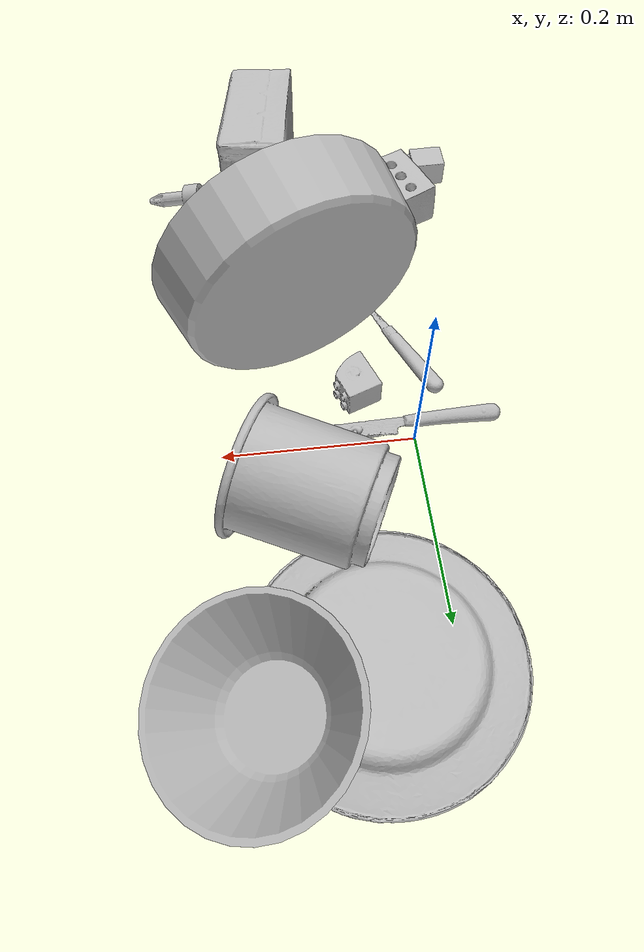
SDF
<sdf version="1.4">
  <world name="default">
    <light name="light1" type="point">
      <pose>0 0 1 0 0 0</pose>
      <diffuse>3 3 3 1</diffuse>
      <specular>3 3 3 1</specular>
    </light>
    <light name="light2" type="point">
      <pose>0 0.5 2 0 0 0</pose>
      <diffuse>1 1 1 1</diffuse>
      <specular>1 1 1 1</specular>
    </light>
    <light name="light3" type="point">
      <pose>0 0.5 2 0 0 0</pose>
      <diffuse>3 3 3 1</diffuse>
      <specular>3 3 3 1</specular>
    </light>
    <scene>
      <ambient>0.7 0.7 0.7</ambient>
    </scene>
    <model name="plate1">
      <link name="link_plate1">
        <collision name="default">
          <geometry>
            <mesh>
              <uri>model://plate/collision_meshes/collision.obj</uri>
              <scale>1.0 1.0 1.0</scale>
            </mesh>
          </geometry>
          <surface>
            <friction>
              <ode>
                <mu>0.5</mu>
                <mu2>0.5</mu2>
              </ode>
            </friction>
          <contact>
        <ode>
            <max_vel>0</max_vel>
            <min_depth>0.0001</min_depth>
            <kp>1e8</kp>
        </ode>
    </contact></surface>
        </collision>
        <visual name="default">
          <geometry>
            <mesh>
              <uri>model://plate/visual_meshes/visual.dae</uri>
              <scale>1.0 1.0 1.0</scale>
            </mesh>
          </geometry>
        </visual>
        <inertial>
          <mass>0.20059238374233246</mass>
          <pose>-0.0006044621695764363 0.00027825910365208983 -0.001056200242601335 0.002218800652723057 -0.0032254723094637602 0.45260588699646775</pose>
          <inertia>
            <ixx>0.00093837525</ixx>
            <iyy>0.0009294</iyy>
            <izz>0.0018353215</izz>
            <ixy>0</ixy>
            <ixz>0</ixz>
            <iyz>0</iyz>
          </inertia>
        </inertial>
      </link>
      <pose>0.06799119710922241 0.22979798913002014 0.013485738076269627 -3.1409127641767935 -0.0033902172623060545 1.2863078712915124</pose>
    </model>
    <model name="plate2">
      <link name="link_plate2">
        <collision name="default">
          <geometry>
            <mesh>
              <uri>model://pan_tefal/collision_meshes/collision.obj</uri>
              <scale>1.0 1.0 1.0</scale>
            </mesh>
          </geometry>
          <surface>
            <friction>
              <ode>
                <mu>0.5</mu>
                <mu2>0.5</mu2>
              </ode>
            </friction>
          <contact>
        <ode>
            <max_vel>0</max_vel>
            <min_depth>0.0001</min_depth>
            <kp>1e8</kp>
        </ode>
    </contact></surface>
        </collision>
        <visual name="default">
          <geometry>
            <mesh>
              <uri>model://pan_tefal/visual_meshes/visual.dae</uri>
              <scale>1.0 1.0 1.0</scale>
            </mesh>
          </geometry>
        </visual>
        <inertial>
          <mass>0.5801199674606323</mass>
          <pose>-0.00018002555589191616 3.279062366345897e-05 -0.008514936082065105 0.0008190222895173471 -0.0003301392673675887 -0.3318501085377774</pose>
          <inertia>
            <ixx>0.00400454</ixx>
            <iyy>0.004030358</iyy>
            <izz>0.0073715877</izz>
            <ixy>0</ixy>
            <ixz>0</ixz>
            <iyz>0</iyz>
          </inertia>
        </inertial>
      </link>
      <pose>0.11207310855388641 -0.13796156644821167 0.12841518223285675 1.4620193731516855 -0.21175851249406313 0.38124335146802857</pose>
    </model>
    <model name="bowl1">
      <link name="link_bowl1">
        <collision name="default">
          <geometry>
            <mesh>
              <uri>model://bowl/collision_meshes/collision.obj</uri>
              <scale>1.0 1.0 1.0</scale>
            </mesh>
          </geometry>
          <surface>
            <friction>
              <ode>
                <mu>0.5</mu>
                <mu2>0.5</mu2>
              </ode>
            </friction>
          <contact>
        <ode>
            <max_vel>0</max_vel>
            <min_depth>0.0001</min_depth>
            <kp>1e8</kp>
        </ode>
    </contact></surface>
        </collision>
        <visual name="default">
          <geometry>
            <mesh>
              <uri>model://bowl/visual_meshes/visual.dae</uri>
              <scale>1.0 1.0 1.0</scale>
            </mesh>
          </geometry>
        </visual>
        <inertial>
          <mass>0.055578216910362244</mass>
          <pose>0.00020445502013899386 -0.0010302060982212424 -0.000804265437182039 -0.015764048263850368 0.014546844804774466 0.7140432473852318</pose>
          <inertia>
            <ixx>0.00012766755</ixx>
            <iyy>0.000124815</iyy>
            <izz>0.00021478078</izz>
            <ixy>0</ixy>
            <ixz>0</ixz>
            <iyz>0</iyz>
          </inertia>
        </inertial>
      </link>
      <pose>0.12202922254800797 -0.14949096739292145 0.08171273022890091 1.1265011966704381 1.085615794421369 -0.05713851155348361</pose>
    </model>
    <model name="bowl2">
      <link name="link_bowl2">
        <collision name="default">
          <geometry>
            <mesh>
              <uri>model://bowl_a/collision_meshes/collision.obj</uri>
              <scale>1.0 1.0 1.0</scale>
            </mesh>
          </geometry>
          <surface>
            <friction>
              <ode>
                <mu>0.5</mu>
                <mu2>0.5</mu2>
              </ode>
            </friction>
          <contact>
        <ode>
            <max_vel>0</max_vel>
            <min_depth>0.0001</min_depth>
            <kp>1e8</kp>
        </ode>
    </contact></surface>
        </collision>
        <visual name="default">
          <geometry>
            <mesh>
              <uri>model://bowl_a/visual_meshes/visual.dae</uri>
              <scale>1.0 1.0 1.0</scale>
            </mesh>
          </geometry>
        </visual>
        <inertial>
          <mass>0.31475314497947693</mass>
          <pose>0.00027867438620887697 4.730821092380211e-05 -0.0013765294570475817 -0.0009805369688078041 -0.0010938258688624044 -0.19123886294168949</pose>
          <inertia>
            <ixx>0.00089611666</ixx>
            <iyy>0.00090161816</iyy>
            <izz>0.0015937777</izz>
            <ixy>0</ixy>
            <ixz>0</ixz>
            <iyz>0</iyz>
          </inertia>
        </inertial>
      </link>
      <pose>0.17781497538089752 0.27161481976509094 0.04670042172074318 0.2800609652603984 -0.1937952252210423 2.5215590010734625</pose>
    </model>
    <model name="silverware1">
      <link name="link_silverware1">
        <collision name="default">
          <geometry>
            <mesh>
              <uri>model://spoon/collision_meshes/collision.obj</uri>
              <scale>1.0 1.0 1.0</scale>
            </mesh>
          </geometry>
          <surface>
            <friction>
              <ode>
                <mu>0.5</mu>
                <mu2>0.5</mu2>
              </ode>
            </friction>
          <contact>
        <ode>
            <max_vel>0</max_vel>
            <min_depth>0.0001</min_depth>
            <kp>1e8</kp>
        </ode>
    </contact></surface>
        </collision>
        <visual name="default">
          <geometry>
            <mesh>
              <uri>model://spoon/visual_meshes/visual.dae</uri>
              <scale>1.0 1.0 1.0</scale>
            </mesh>
          </geometry>
        </visual>
        <inertial>
          <mass>0.019504988566040993</mass>
          <pose>-0.005526313092559576 -0.0016034174477681518 -0.0007271654321812093 0.03521671064592188 -0.039065845080026425 0.006150613244710899</pose>
          <inertia>
            <ixx>1.0848988e-06</ixx>
            <iyy>7.421582e-05</iyy>
            <izz>7.4750846e-05</izz>
            <ixy>0</ixy>
            <ixz>0</ixz>
            <iyz>0</iyz>
          </inertia>
        </inertial>
      </link>
      <pose>0.00864105112850666 -0.13978831470012665 0.008385264314711094 0.0067317762906381265 0.026892981123162293 -1.137116467356912</pose>
    </model>
    <model name="box1">
      <link name="link_box1">
        <collision name="default">
          <geometry>
            <mesh>
              <uri>model://cracker_box/collision_meshes/collision.obj</uri>
              <scale>1.0 1.0 1.0</scale>
            </mesh>
          </geometry>
          <surface>
            <friction>
              <ode>
                <mu>0.5</mu>
                <mu2>0.5</mu2>
              </ode>
            </friction>
          <contact>
        <ode>
            <max_vel>0</max_vel>
            <min_depth>0.0001</min_depth>
            <kp>1e8</kp>
        </ode>
    </contact></surface>
        </collision>
        <visual name="default">
          <geometry>
            <mesh>
              <uri>model://cracker_box/visual_meshes/visual.dae</uri>
              <scale>1.0 1.0 1.0</scale>
            </mesh>
          </geometry>
        </visual>
        <inertial>
          <mass>2.5078790187835693</mass>
          <pose>0.0009464150061830878 0.00025434247800149024 -0.0017029535956680775 -0.00031620768203149627 -0.01110648960041945 0.002546794303792924</pose>
          <inertia>
            <ixx>0.0063789245</ixx>
            <iyy>0.010532858</iyy>
            <izz>0.015031353</izz>
            <ixy>0</ixy>
            <ixz>0</ixz>
            <iyz>0</iyz>
          </inertia>
        </inertial>
      </link>
      <pose>0.13441205024719238 -0.2420576810836792 0.12107817083597183 1.6741121332568525 1.3536953373633416 1.552408656801468</pose>
    </model>
    <model name="box2">
      <link name="link_box2">
        <collision name="default">
          <geometry>
            <mesh>
              <uri>model://gelatin_box/collision_meshes/collision.obj</uri>
              <scale>1.0 1.0 1.0</scale>
            </mesh>
          </geometry>
          <surface>
            <friction>
              <ode>
                <mu>0.5</mu>
                <mu2>0.5</mu2>
              </ode>
            </friction>
          <contact>
        <ode>
            <max_vel>0</max_vel>
            <min_depth>0.0001</min_depth>
            <kp>1e8</kp>
        </ode>
    </contact></surface>
        </collision>
        <visual name="default">
          <geometry>
            <mesh>
              <uri>model://gelatin_box/visual_meshes/visual.dae</uri>
              <scale>1.0 1.0 1.0</scale>
            </mesh>
          </geometry>
        </visual>
        <inertial>
          <mass>0.1847851723432541</mass>
          <pose>0.0004319618456065655 0.00011156872642459348 -0.0003640321083366871 -0.001050372098056681 -0.004755818221834168 0.016440563197305347</pose>
          <inertia>
            <ixx>0.00013044327</ixx>
            <iyy>9.317494e-05</iyy>
            <izz>0.0001985637</izz>
            <ixy>0</ixy>
            <ixz>0</ixz>
            <iyz>0</iyz>
          </inertia>
        </inertial>
      </link>
      <pose>0.05887679010629654 -0.3111269772052765 0.015168319456279278 0.005597493654490848 -0.007304591166825464 -2.637495475164086</pose>
    </model>
    <model name="cup1">
      <link name="link_cup1">
        <collision name="default">
          <geometry>
            <mesh>
              <uri>model://d_cups/collision_meshes/collision.obj</uri>
              <scale>2.0 2.0 2.0</scale>
            </mesh>
          </geometry>
          <surface>
            <friction>
              <ode>
                <mu>0.5</mu>
                <mu2>0.5</mu2>
              </ode>
            </friction>
          <contact>
        <ode>
            <max_vel>0</max_vel>
            <min_depth>0.0001</min_depth>
            <kp>1e8</kp>
        </ode>
    </contact></surface>
        </collision>
        <visual name="default">
          <geometry>
            <mesh>
              <uri>model://d_cups/visual_meshes/visual.dae</uri>
              <scale>2.0 2.0 2.0</scale>
            </mesh>
          </geometry>
        </visual>
        <inertial>
          <mass>0.47328615188598633</mass>
          <pose>0.0016136143822222948 0.0038234798703342676 -0.004533303435891867 0.24012870248045765 -0.247092443015796 0.5942312682521343</pose>
          <inertia>
            <ixx>0.0015850074</ixx>
            <iyy>0.0015804201</iyy>
            <izz>0.0014347013</izz>
            <ixy>0</ixy>
            <ixz>0</ixz>
            <iyz>0</iyz>
          </inertia>
        </inertial>
      </link>
      <pose>0.11579636484384537 0.08034338802099228 0.06764420866966248 -1.3688772049963804 1.3305980880615051 -1.8340491790729676</pose>
    </model>
    <model name="silverware2">
      <link name="link_silverware2">
        <collision name="default">
          <geometry>
            <mesh>
              <uri>model://knife/collision_meshes/collision.obj</uri>
              <scale>1.0 1.0 1.0</scale>
            </mesh>
          </geometry>
          <surface>
            <friction>
              <ode>
                <mu>0.5</mu>
                <mu2>0.5</mu2>
              </ode>
            </friction>
          <contact>
        <ode>
            <max_vel>0</max_vel>
            <min_depth>0.0001</min_depth>
            <kp>1e8</kp>
        </ode>
    </contact></surface>
        </collision>
        <visual name="default">
          <geometry>
            <mesh>
              <uri>model://knife/visual_meshes/visual.dae</uri>
              <scale>1.0 1.0 1.0</scale>
            </mesh>
          </geometry>
        </visual>
        <inertial>
          <mass>0.03430156037211418</mass>
          <pose>-0.02378525398671627 0.0015275129117071629 5.062017953605391e-05 0.07305950900181668 0.01724842494985857 -0.007409825116106198</pose>
          <inertia>
            <ixx>9.736174e-07</ixx>
            <iyy>0.00013178105</iyy>
            <izz>0.00013209462</izz>
            <ixy>0</ixy>
            <ixz>0</ixz>
            <iyz>0</iyz>
          </inertia>
        </inertial>
      </link>
      <pose>0.014615822583436966 -0.015552522614598274 0.005810763221234083 2.8893770188286694 0.025915047684028834 0.018032549570818644</pose>
    </model>
    <model name="silverware3">
      <link name="link_silverware3">
        <collision name="default">
          <geometry>
            <mesh>
              <uri>model://fork/collision_meshes/collision.obj</uri>
              <scale>1.0 1.0 1.0</scale>
            </mesh>
          </geometry>
          <surface>
            <friction>
              <ode>
                <mu>0.5</mu>
                <mu2>0.5</mu2>
              </ode>
            </friction>
          <contact>
        <ode>
            <max_vel>0</max_vel>
            <min_depth>0.0001</min_depth>
            <kp>1e8</kp>
        </ode>
    </contact></surface>
        </collision>
        <visual name="default">
          <geometry>
            <mesh>
              <uri>model://fork/visual_meshes/visual.dae</uri>
              <scale>1.0 1.0 1.0</scale>
            </mesh>
          </geometry>
        </visual>
        <inertial>
          <mass>0.014111565425992012</mass>
          <pose>-0.02957005426287651 0.0004658825055230409 0.00032188615296036005 -0.01355195006397287 -0.010977841645129428 0.014453906946454091</pose>
          <inertia>
            <ixx>4.9469025e-07</ixx>
            <iyy>3.684124e-05</iyy>
            <izz>3.7062495e-05</izz>
            <ixy>0</ixy>
            <ixz>0</ixz>
            <iyz>0</iyz>
          </inertia>
        </inertial>
      </link>
      <pose>0.18041254580020905 -0.2950424551963806 0.005723603069782257 -0.18388275465774848 0.024643870919731 1.4366543863255117</pose>
    </model>
    <model name="toy1">
      <link name="link_toy1">
        <collision name="default">
          <geometry>
            <mesh>
              <uri>model://b_lego_duplo/collision_meshes/collision.obj</uri>
              <scale>1.0 1.0 1.0</scale>
            </mesh>
          </geometry>
          <surface>
            <friction>
              <ode>
                <mu>0.5</mu>
                <mu2>0.5</mu2>
              </ode>
            </friction>
          <contact>
        <ode>
            <max_vel>0</max_vel>
            <min_depth>0.0001</min_depth>
            <kp>1e8</kp>
        </ode>
    </contact></surface>
        </collision>
        <visual name="default">
          <geometry>
            <mesh>
              <uri>model://b_lego_duplo/visual_meshes/visual.dae</uri>
              <scale>1.0 1.0 1.0</scale>
            </mesh>
          </geometry>
        </visual>
        <inertial>
          <mass>0.029451588168740273</mass>
          <pose>-0.00011053002526750788 -9.152366146736313e-06 0.0019294293597340584 -0.03749525813168218 -0.026353287435260622 0.45191626186006195</pose>
          <inertia>
            <ixx>6.0274892e-06</ixx>
            <iyy>6.0680068e-06</iyy>
            <izz>5.3702943e-06</izz>
            <ixy>0</ixy>
            <ixz>0</ixz>
            <iyz>0</iyz>
          </inertia>
        </inertial>
      </link>
      <pose>-0.07753057777881622 -0.38384607434272766 0.016152318567037582 -3.121047541922667 1.5624527265654344 -3.112492354854279</pose>
    </model>
    <model name="toy2">
      <link name="link_toy2">
        <collision name="default">
          <geometry>
            <mesh>
              <uri>model://foam_brick/collision_meshes/collision.obj</uri>
              <scale>1.0 1.0 1.0</scale>
            </mesh>
          </geometry>
          <surface>
            <friction>
              <ode>
                <mu>0.5</mu>
                <mu2>0.5</mu2>
              </ode>
            </friction>
          <contact>
        <ode>
            <max_vel>0</max_vel>
            <min_depth>0.0001</min_depth>
            <kp>1e8</kp>
        </ode>
    </contact></surface>
        </collision>
        <visual name="default">
          <geometry>
            <mesh>
              <uri>model://foam_brick/visual_meshes/visual.dae</uri>
              <scale>1.0 1.0 1.0</scale>
            </mesh>
          </geometry>
        </visual>
        <inertial>
          <mass>0.2443593144416809</mass>
          <pose>-0.0002522472059354186 0.00034584393142722547 -0.0002532101352699101 -0.2940184651969868 0.017274440266988163 -0.0007449890747987857</pose>
          <inertia>
            <ixx>0.00010674072</ixx>
            <iyy>0.00017041703</iyy>
            <izz>0.00017258283</izz>
            <ixy>0</ixy>
            <ixz>0</ixz>
            <iyz>0</iyz>
          </inertia>
        </inertial>
      </link>
      <pose>-0.03743863105773926 -0.3339906334877014 0.025922805070877075 0.013417108922057558 0.004152989673588729 1.979407438397643</pose>
    </model>
    <model name="toy3">
      <link name="link_toy3">
        <collision name="default">
          <geometry>
            <mesh>
              <uri>model://d_lego_duplo/collision_meshes/collision.obj</uri>
              <scale>1.0 1.0 1.0</scale>
            </mesh>
          </geometry>
          <surface>
            <friction>
              <ode>
                <mu>0.5</mu>
                <mu2>0.5</mu2>
              </ode>
            </friction>
          <contact>
        <ode>
            <max_vel>0</max_vel>
            <min_depth>0.0001</min_depth>
            <kp>1e8</kp>
        </ode>
    </contact></surface>
        </collision>
        <visual name="default">
          <geometry>
            <mesh>
              <uri>model://d_lego_duplo/visual_meshes/visual.dae</uri>
              <scale>1.0 1.0 1.0</scale>
            </mesh>
          </geometry>
        </visual>
        <inertial>
          <mass>0.033699363470077515</mass>
          <pose>0.002830563113093376 0.0001636613014852628 0.0008589802891947329 0.08010879334546937 -0.38355231252286476 0.0010296922462193392</pose>
          <inertia>
            <ixx>6.5236977e-06</ixx>
            <iyy>9.258897e-06</iyy>
            <izz>8.928908e-06</izz>
            <ixy>0</ixy>
            <ixz>0</ixz>
            <iyz>0</iyz>
          </inertia>
        </inertial>
      </link>
      <pose>0.056254010647535324 -0.06555438786745071 0.016249634325504303 1.5793376367790506 -0.01312002658741155 1.9338169435829529</pose>
    </model>
    <model name="toy4">
      <link name="link_toy4">
        <collision name="default">
          <geometry>
            <mesh>
              <uri>model://d_toy_airplane/collision_meshes/collision.obj</uri>
              <scale>1.0 1.0 1.0</scale>
            </mesh>
          </geometry>
          <surface>
            <friction>
              <ode>
                <mu>0.5</mu>
                <mu2>0.5</mu2>
              </ode>
            </friction>
          <contact>
        <ode>
            <max_vel>0</max_vel>
            <min_depth>0.0001</min_depth>
            <kp>1e8</kp>
        </ode>
    </contact></surface>
        </collision>
        <visual name="default">
          <geometry>
            <mesh>
              <uri>model://d_toy_airplane/visual_meshes/visual.dae</uri>
              <scale>1.0 1.0 1.0</scale>
            </mesh>
          </geometry>
        </visual>
        <inertial>
          <mass>0.016584575176239014</mass>
          <pose>9.410303027834743e-05 -5.809338472317904e-05 -0.01172809861600399 0.0002669776058846709 0.004678969238403601 0.5194647440200774</pose>
          <inertia>
            <ixx>4.9717323e-06</ixx>
            <iyy>4.975482e-06</iyy>
            <izz>1.5009987e-06</izz>
            <ixy>0</ixy>
            <ixz>0</ixz>
            <iyz>0</iyz>
          </inertia>
        </inertial>
      </link>
      <pose>0.2348497360944748 -0.3672100007534027 0.011407834477722645 1.7958520599757284 0.23010171095495263 1.4201998002104406</pose>
    </model>
    <model name="toy5">
      <link name="link_toy5">
        <collision name="default">
          <geometry>
            <mesh>
              <uri>model://e_toy_airplane/collision_meshes/collision.obj</uri>
              <scale>1.0 1.0 1.0</scale>
            </mesh>
          </geometry>
          <surface>
            <friction>
              <ode>
                <mu>0.5</mu>
                <mu2>0.5</mu2>
              </ode>
            </friction>
          <contact>
        <ode>
            <max_vel>0</max_vel>
            <min_depth>0.0001</min_depth>
            <kp>1e8</kp>
        </ode>
    </contact></surface>
        </collision>
        <visual name="default">
          <geometry>
            <mesh>
              <uri>model://e_toy_airplane/visual_meshes/visual.dae</uri>
              <scale>1.0 1.0 1.0</scale>
            </mesh>
          </geometry>
        </visual>
        <inertial>
          <mass>0.01714155077934265</mass>
          <pose>0.00011740483023459092 -2.2482887288788334e-05 -0.011187203228473663 0.005518467343725363 0.009228313895921611 0.15041273076279138</pose>
          <inertia>
            <ixx>5.2317982e-06</ixx>
            <iyy>5.178279e-06</iyy>
            <izz>1.5723607e-06</izz>
            <ixy>0</ixy>
            <ixz>0</ixz>
            <iyz>0</iyz>
          </inertia>
        </inertial>
      </link>
      <pose>0.09833595156669617 -0.3724691867828369 0.010332433506846428 2.425661398944081 -1.1977903169484343 0.8277625427989724</pose>
    </model>
  <physics type="ode">
      <max_contacts>50</max_contacts>
      <ode>
        <solver>
          <type>quick</type>
          <iters>75</iters>
        </solver>
        <constraints>
          <contact_max_correcting_vel>0</contact_max_correcting_vel>
          <contact_surface_layer>0</contact_surface_layer>
        </constraints>
      </ode>
    </physics></world>
</sdf>
